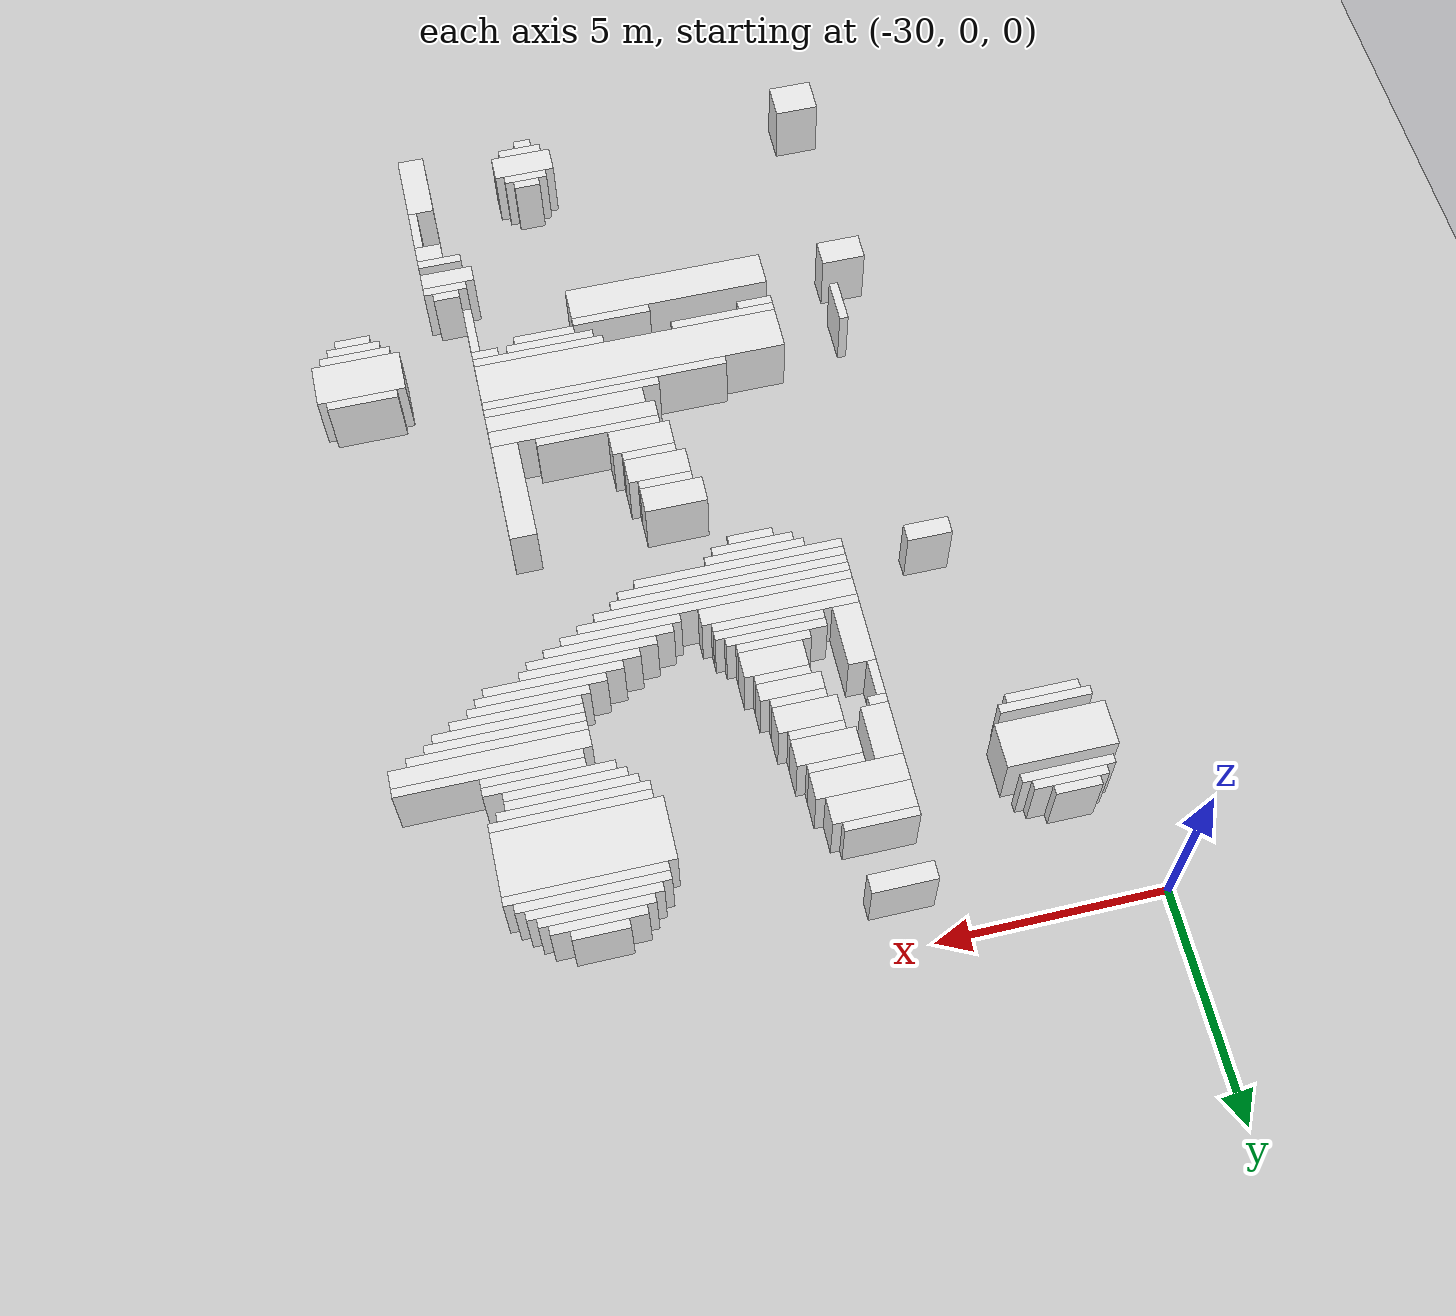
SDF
<sdf version="1.7">
 <world name="default">
  <model name="ground_plane">
   <static>1</static>
   <link name="link">
    <collision name="collision">
     <geometry><plane><normal>0 0 1</normal><size>120 120</size></plane></geometry>
    </collision>
    <visual name="visual">
     <geometry><plane><normal>0 0 1</normal><size>120 120</size></plane></geometry>
     <material>
      <script><uri>file://media/materials/scripts/gazebo.material</uri><name>Gazebo/Grey</name></script>
     </material>
    </visual>
   </link>
  </model>
  <model name="random_complex_01_model">
   <static>1</static>
   <link name="obs_1883">
    <pose>-24.5000 -1.0000 0.8000 0 0 0</pose>
    <collision name="obs_1883_col"><geometry><box><size>1.4000 0.4000 1.6000</size></box></geometry></collision>
    <visual name="obs_1883_vis">
     <geometry><box><size>1.4000 0.4000 1.6000</size></box></geometry>
     <material>
      <script><uri>file://media/materials/scripts/gazebo.material</uri><name>Gazebo/White</name></script>
     </material>
    </visual>
   </link>
   <link name="obs_1892">
    <pose>-18.4000 -1.3000 0.8000 0 0 0</pose>
    <collision name="obs_1892_col"><geometry><box><size>1.2000 0.2000 1.6000</size></box></geometry></collision>
    <visual name="obs_1892_vis">
     <geometry><box><size>1.2000 0.2000 1.6000</size></box></geometry>
     <material>
      <script><uri>file://media/materials/scripts/gazebo.material</uri><name>Gazebo/White</name></script>
     </material>
    </visual>
   </link>
   <link name="obs_1899">
    <pose>-18.4000 -1.5000 0.8000 0 0 0</pose>
    <collision name="obs_1899_col"><geometry><box><size>2.0000 0.2000 1.6000</size></box></geometry></collision>
    <visual name="obs_1899_vis">
     <geometry><box><size>2.0000 0.2000 1.6000</size></box></geometry>
     <material>
      <script><uri>file://media/materials/scripts/gazebo.material</uri><name>Gazebo/White</name></script>
     </material>
    </visual>
   </link>
   <link name="obs_1905">
    <pose>-18.4000 -1.7000 0.8000 0 0 0</pose>
    <collision name="obs_1905_col"><geometry><box><size>2.4000 0.2000 1.6000</size></box></geometry></collision>
    <visual name="obs_1905_vis">
     <geometry><box><size>2.4000 0.2000 1.6000</size></box></geometry>
     <material>
      <script><uri>file://media/materials/scripts/gazebo.material</uri><name>Gazebo/White</name></script>
     </material>
    </visual>
   </link>
   <link name="obs_1910">
    <pose>-18.4000 -1.9000 0.8000 0 0 0</pose>
    <collision name="obs_1910_col"><geometry><box><size>2.8000 0.2000 1.6000</size></box></geometry></collision>
    <visual name="obs_1910_vis">
     <geometry><box><size>2.8000 0.2000 1.6000</size></box></geometry>
     <material>
      <script><uri>file://media/materials/scripts/gazebo.material</uri><name>Gazebo/White</name></script>
     </material>
    </visual>
   </link>
   <link name="obs_1916">
    <pose>-28.5000 -2.1000 0.8000 0 0 0</pose>
    <collision name="obs_1916_col"><geometry><box><size>1.0000 0.2000 1.6000</size></box></geometry></collision>
    <visual name="obs_1916_vis">
     <geometry><box><size>1.0000 0.2000 1.6000</size></box></geometry>
     <material>
      <script><uri>file://media/materials/scripts/gazebo.material</uri><name>Gazebo/White</name></script>
     </material>
    </visual>
   </link>
   <link name="obs_1917">
    <pose>-18.4000 -2.1000 0.8000 0 0 0</pose>
    <collision name="obs_1917_col"><geometry><box><size>3.2000 0.2000 1.6000</size></box></geometry></collision>
    <visual name="obs_1917_vis">
     <geometry><box><size>3.2000 0.2000 1.6000</size></box></geometry>
     <material>
      <script><uri>file://media/materials/scripts/gazebo.material</uri><name>Gazebo/White</name></script>
     </material>
    </visual>
   </link>
   <link name="obs_1923">
    <pose>-28.4000 -2.3000 0.8000 0 0 0</pose>
    <collision name="obs_1923_col"><geometry><box><size>1.6000 0.2000 1.6000</size></box></geometry></collision>
    <visual name="obs_1923_vis">
     <geometry><box><size>1.6000 0.2000 1.6000</size></box></geometry>
     <material>
      <script><uri>file://media/materials/scripts/gazebo.material</uri><name>Gazebo/White</name></script>
     </material>
    </visual>
   </link>
   <link name="obs_1924">
    <pose>-24.4000 -2.3000 0.8000 0 0 0</pose>
    <collision name="obs_1924_col"><geometry><box><size>1.6000 0.2000 1.6000</size></box></geometry></collision>
    <visual name="obs_1924_vis">
     <geometry><box><size>1.6000 0.2000 1.6000</size></box></geometry>
     <material>
      <script><uri>file://media/materials/scripts/gazebo.material</uri><name>Gazebo/White</name></script>
     </material>
    </visual>
   </link>
   <link name="obs_1925">
    <pose>-18.3000 -2.3000 0.8000 0 0 0</pose>
    <collision name="obs_1925_col"><geometry><box><size>3.4000 0.2000 1.6000</size></box></geometry></collision>
    <visual name="obs_1925_vis">
     <geometry><box><size>3.4000 0.2000 1.6000</size></box></geometry>
     <material>
      <script><uri>file://media/materials/scripts/gazebo.material</uri><name>Gazebo/White</name></script>
     </material>
    </visual>
   </link>
   <link name="obs_1932">
    <pose>-28.4000 -2.5000 0.8000 0 0 0</pose>
    <collision name="obs_1932_col"><geometry><box><size>2.0000 0.2000 1.6000</size></box></geometry></collision>
    <visual name="obs_1932_vis">
     <geometry><box><size>2.0000 0.2000 1.6000</size></box></geometry>
     <material>
      <script><uri>file://media/materials/scripts/gazebo.material</uri><name>Gazebo/White</name></script>
     </material>
    </visual>
   </link>
   <link name="obs_1944">
    <pose>-24.3000 -2.7000 0.8000 0 0 0</pose>
    <collision name="obs_1944_col"><geometry><box><size>1.8000 0.6000 1.6000</size></box></geometry></collision>
    <visual name="obs_1944_vis">
     <geometry><box><size>1.8000 0.6000 1.6000</size></box></geometry>
     <material>
      <script><uri>file://media/materials/scripts/gazebo.material</uri><name>Gazebo/White</name></script>
     </material>
    </visual>
   </link>
   <link name="obs_1967">
    <pose>-24.2000 -3.3000 0.8000 0 0 0</pose>
    <collision name="obs_1967_col"><geometry><box><size>2.0000 0.6000 1.6000</size></box></geometry></collision>
    <visual name="obs_1967_vis">
     <geometry><box><size>2.0000 0.6000 1.6000</size></box></geometry>
     <material>
      <script><uri>file://media/materials/scripts/gazebo.material</uri><name>Gazebo/White</name></script>
     </material>
    </visual>
   </link>
   <link name="obs_1974">
    <pose>-18.4000 -3.1000 0.8000 0 0 0</pose>
    <collision name="obs_1974_col"><geometry><box><size>3.6000 1.4000 1.6000</size></box></geometry></collision>
    <visual name="obs_1974_vis">
     <geometry><box><size>3.6000 1.4000 1.6000</size></box></geometry>
     <material>
      <script><uri>file://media/materials/scripts/gazebo.material</uri><name>Gazebo/White</name></script>
     </material>
    </visual>
   </link>
   <link name="obs_1975">
    <pose>-28.4000 -3.3000 0.8000 0 0 0</pose>
    <collision name="obs_1975_col"><geometry><box><size>2.4000 1.0000 1.6000</size></box></geometry></collision>
    <visual name="obs_1975_vis">
     <geometry><box><size>2.4000 1.0000 1.6000</size></box></geometry>
     <material>
      <script><uri>file://media/materials/scripts/gazebo.material</uri><name>Gazebo/White</name></script>
     </material>
    </visual>
   </link>
   <link name="obs_1979">
    <pose>-23.8000 -3.7000 0.8000 0 0 0</pose>
    <collision name="obs_1979_col"><geometry><box><size>1.2000 0.2000 1.6000</size></box></geometry></collision>
    <visual name="obs_1979_vis">
     <geometry><box><size>1.2000 0.2000 1.6000</size></box></geometry>
     <material>
      <script><uri>file://media/materials/scripts/gazebo.material</uri><name>Gazebo/White</name></script>
     </material>
    </visual>
   </link>
   <link name="obs_1989">
    <pose>-18.3000 -3.9000 0.8000 0 0 0</pose>
    <collision name="obs_1989_col"><geometry><box><size>3.4000 0.2000 1.6000</size></box></geometry></collision>
    <visual name="obs_1989_vis">
     <geometry><box><size>3.4000 0.2000 1.6000</size></box></geometry>
     <material>
      <script><uri>file://media/materials/scripts/gazebo.material</uri><name>Gazebo/White</name></script>
     </material>
    </visual>
   </link>
   <link name="obs_1997">
    <pose>-28.4000 -4.1000 0.8000 0 0 0</pose>
    <collision name="obs_1997_col"><geometry><box><size>2.0000 0.2000 1.6000</size></box></geometry></collision>
    <visual name="obs_1997_vis">
     <geometry><box><size>2.0000 0.2000 1.6000</size></box></geometry>
     <material>
      <script><uri>file://media/materials/scripts/gazebo.material</uri><name>Gazebo/White</name></script>
     </material>
    </visual>
   </link>
   <link name="obs_1998">
    <pose>-18.4000 -4.1000 0.8000 0 0 0</pose>
    <collision name="obs_1998_col"><geometry><box><size>3.2000 0.2000 1.6000</size></box></geometry></collision>
    <visual name="obs_1998_vis">
     <geometry><box><size>3.2000 0.2000 1.6000</size></box></geometry>
     <material>
      <script><uri>file://media/materials/scripts/gazebo.material</uri><name>Gazebo/White</name></script>
     </material>
    </visual>
   </link>
   <link name="obs_2004">
    <pose>-23.7000 -4.1000 0.8000 0 0 0</pose>
    <collision name="obs_2004_col"><geometry><box><size>1.4000 0.6000 1.6000</size></box></geometry></collision>
    <visual name="obs_2004_vis">
     <geometry><box><size>1.4000 0.6000 1.6000</size></box></geometry>
     <material>
      <script><uri>file://media/materials/scripts/gazebo.material</uri><name>Gazebo/White</name></script>
     </material>
    </visual>
   </link>
   <link name="obs_2008">
    <pose>-28.4000 -4.3000 0.8000 0 0 0</pose>
    <collision name="obs_2008_col"><geometry><box><size>1.6000 0.2000 1.6000</size></box></geometry></collision>
    <visual name="obs_2008_vis">
     <geometry><box><size>1.6000 0.2000 1.6000</size></box></geometry>
     <material>
      <script><uri>file://media/materials/scripts/gazebo.material</uri><name>Gazebo/White</name></script>
     </material>
    </visual>
   </link>
   <link name="obs_2009">
    <pose>-18.4000 -4.3000 0.8000 0 0 0</pose>
    <collision name="obs_2009_col"><geometry><box><size>2.8000 0.2000 1.6000</size></box></geometry></collision>
    <visual name="obs_2009_vis">
     <geometry><box><size>2.8000 0.2000 1.6000</size></box></geometry>
     <material>
      <script><uri>file://media/materials/scripts/gazebo.material</uri><name>Gazebo/White</name></script>
     </material>
    </visual>
   </link>
   <link name="obs_2019">
    <pose>-23.6000 -4.5000 0.8000 0 0 0</pose>
    <collision name="obs_2019_col"><geometry><box><size>1.2000 0.2000 1.6000</size></box></geometry></collision>
    <visual name="obs_2019_vis">
     <geometry><box><size>1.2000 0.2000 1.6000</size></box></geometry>
     <material>
      <script><uri>file://media/materials/scripts/gazebo.material</uri><name>Gazebo/White</name></script>
     </material>
    </visual>
   </link>
   <link name="obs_2020">
    <pose>-18.3000 -4.5000 0.8000 0 0 0</pose>
    <collision name="obs_2020_col"><geometry><box><size>2.6000 0.2000 1.6000</size></box></geometry></collision>
    <visual name="obs_2020_vis">
     <geometry><box><size>2.6000 0.2000 1.6000</size></box></geometry>
     <material>
      <script><uri>file://media/materials/scripts/gazebo.material</uri><name>Gazebo/White</name></script>
     </material>
    </visual>
   </link>
   <link name="obs_2027">
    <pose>-24.9000 -4.2000 0.8000 0 0 0</pose>
    <collision name="obs_2027_col"><geometry><box><size>0.6000 1.2000 1.6000</size></box></geometry></collision>
    <visual name="obs_2027_vis">
     <geometry><box><size>0.6000 1.2000 1.6000</size></box></geometry>
     <material>
      <script><uri>file://media/materials/scripts/gazebo.material</uri><name>Gazebo/White</name></script>
     </material>
    </visual>
   </link>
   <link name="obs_2030">
    <pose>-18.0000 -4.7000 0.8000 0 0 0</pose>
    <collision name="obs_2030_col"><geometry><box><size>2.8000 0.2000 1.6000</size></box></geometry></collision>
    <visual name="obs_2030_vis">
     <geometry><box><size>2.8000 0.2000 1.6000</size></box></geometry>
     <material>
      <script><uri>file://media/materials/scripts/gazebo.material</uri><name>Gazebo/White</name></script>
     </material>
    </visual>
   </link>
   <link name="obs_2037">
    <pose>-25.0000 -4.9000 0.8000 0 0 0</pose>
    <collision name="obs_2037_col"><geometry><box><size>0.4000 0.2000 1.6000</size></box></geometry></collision>
    <visual name="obs_2037_vis">
     <geometry><box><size>0.4000 0.2000 1.6000</size></box></geometry>
     <material>
      <script><uri>file://media/materials/scripts/gazebo.material</uri><name>Gazebo/White</name></script>
     </material>
    </visual>
   </link>
   <link name="obs_2038">
    <pose>-17.7000 -4.9000 0.8000 0 0 0</pose>
    <collision name="obs_2038_col"><geometry><box><size>2.2000 0.2000 1.6000</size></box></geometry></collision>
    <visual name="obs_2038_vis">
     <geometry><box><size>2.2000 0.2000 1.6000</size></box></geometry>
     <material>
      <script><uri>file://media/materials/scripts/gazebo.material</uri><name>Gazebo/White</name></script>
     </material>
    </visual>
   </link>
   <link name="obs_2044">
    <pose>-23.5000 -4.9000 0.8000 0 0 0</pose>
    <collision name="obs_2044_col"><geometry><box><size>1.4000 0.6000 1.6000</size></box></geometry></collision>
    <visual name="obs_2044_vis">
     <geometry><box><size>1.4000 0.6000 1.6000</size></box></geometry>
     <material>
      <script><uri>file://media/materials/scripts/gazebo.material</uri><name>Gazebo/White</name></script>
     </material>
    </visual>
   </link>
   <link name="obs_2046">
    <pose>-16.8000 -5.1000 0.8000 0 0 0</pose>
    <collision name="obs_2046_col"><geometry><box><size>4.0000 0.2000 1.6000</size></box></geometry></collision>
    <visual name="obs_2046_vis">
     <geometry><box><size>4.0000 0.2000 1.6000</size></box></geometry>
     <material>
      <script><uri>file://media/materials/scripts/gazebo.material</uri><name>Gazebo/White</name></script>
     </material>
    </visual>
   </link>
   <link name="obs_2052">
    <pose>-23.4000 -5.3000 0.8000 0 0 0</pose>
    <collision name="obs_2052_col"><geometry><box><size>1.2000 0.2000 1.6000</size></box></geometry></collision>
    <visual name="obs_2052_vis">
     <geometry><box><size>1.2000 0.2000 1.6000</size></box></geometry>
     <material>
      <script><uri>file://media/materials/scripts/gazebo.material</uri><name>Gazebo/White</name></script>
     </material>
    </visual>
   </link>
   <link name="obs_2056">
    <pose>-16.9000 -5.4000 0.8000 0 0 0</pose>
    <collision name="obs_2056_col"><geometry><box><size>4.2000 0.4000 1.6000</size></box></geometry></collision>
    <visual name="obs_2056_vis">
     <geometry><box><size>4.2000 0.4000 1.6000</size></box></geometry>
     <material>
      <script><uri>file://media/materials/scripts/gazebo.material</uri><name>Gazebo/White</name></script>
     </material>
    </visual>
   </link>
   <link name="obs_2061">
    <pose>-25.1000 -5.4000 0.8000 0 0 0</pose>
    <collision name="obs_2061_col"><geometry><box><size>0.2000 0.8000 1.6000</size></box></geometry></collision>
    <visual name="obs_2061_vis">
     <geometry><box><size>0.2000 0.8000 1.6000</size></box></geometry>
     <material>
      <script><uri>file://media/materials/scripts/gazebo.material</uri><name>Gazebo/White</name></script>
     </material>
    </visual>
   </link>
   <link name="obs_2063">
    <pose>-23.3000 -5.6000 0.8000 0 0 0</pose>
    <collision name="obs_2063_col"><geometry><box><size>1.4000 0.4000 1.6000</size></box></geometry></collision>
    <visual name="obs_2063_vis">
     <geometry><box><size>1.4000 0.4000 1.6000</size></box></geometry>
     <material>
      <script><uri>file://media/materials/scripts/gazebo.material</uri><name>Gazebo/White</name></script>
     </material>
    </visual>
   </link>
   <link name="obs_2065">
    <pose>-17.1000 -5.7000 0.8000 0 0 0</pose>
    <collision name="obs_2065_col"><geometry><box><size>3.8000 0.2000 1.6000</size></box></geometry></collision>
    <visual name="obs_2065_vis">
     <geometry><box><size>3.8000 0.2000 1.6000</size></box></geometry>
     <material>
      <script><uri>file://media/materials/scripts/gazebo.material</uri><name>Gazebo/White</name></script>
     </material>
    </visual>
   </link>
   <link name="obs_2072">
    <pose>-23.2000 -5.9000 0.8000 0 0 0</pose>
    <collision name="obs_2072_col"><geometry><box><size>1.2000 0.2000 1.6000</size></box></geometry></collision>
    <visual name="obs_2072_vis">
     <geometry><box><size>1.2000 0.2000 1.6000</size></box></geometry>
     <material>
      <script><uri>file://media/materials/scripts/gazebo.material</uri><name>Gazebo/White</name></script>
     </material>
    </visual>
   </link>
   <link name="obs_2073">
    <pose>-17.3000 -5.9000 0.8000 0 0 0</pose>
    <collision name="obs_2073_col"><geometry><box><size>3.4000 0.2000 1.6000</size></box></geometry></collision>
    <visual name="obs_2073_vis">
     <geometry><box><size>3.4000 0.2000 1.6000</size></box></geometry>
     <material>
      <script><uri>file://media/materials/scripts/gazebo.material</uri><name>Gazebo/White</name></script>
     </material>
    </visual>
   </link>
   <link name="obs_2080">
    <pose>-17.4000 -6.1000 0.8000 0 0 0</pose>
    <collision name="obs_2080_col"><geometry><box><size>3.2000 0.2000 1.6000</size></box></geometry></collision>
    <visual name="obs_2080_vis">
     <geometry><box><size>3.2000 0.2000 1.6000</size></box></geometry>
     <material>
      <script><uri>file://media/materials/scripts/gazebo.material</uri><name>Gazebo/White</name></script>
     </material>
    </visual>
   </link>
   <link name="obs_2088">
    <pose>-17.6000 -6.3000 0.8000 0 0 0</pose>
    <collision name="obs_2088_col"><geometry><box><size>2.8000 0.2000 1.6000</size></box></geometry></collision>
    <visual name="obs_2088_vis">
     <geometry><box><size>2.8000 0.2000 1.6000</size></box></geometry>
     <material>
      <script><uri>file://media/materials/scripts/gazebo.material</uri><name>Gazebo/White</name></script>
     </material>
    </visual>
   </link>
   <link name="obs_2092">
    <pose>-23.1000 -6.3000 0.8000 0 0 0</pose>
    <collision name="obs_2092_col"><geometry><box><size>1.4000 0.6000 1.6000</size></box></geometry></collision>
    <visual name="obs_2092_vis">
     <geometry><box><size>1.4000 0.6000 1.6000</size></box></geometry>
     <material>
      <script><uri>file://media/materials/scripts/gazebo.material</uri><name>Gazebo/White</name></script>
     </material>
    </visual>
   </link>
   <link name="obs_2094">
    <pose>-17.9000 -6.5000 0.8000 0 0 0</pose>
    <collision name="obs_2094_col"><geometry><box><size>2.6000 0.2000 1.6000</size></box></geometry></collision>
    <visual name="obs_2094_vis">
     <geometry><box><size>2.6000 0.2000 1.6000</size></box></geometry>
     <material>
      <script><uri>file://media/materials/scripts/gazebo.material</uri><name>Gazebo/White</name></script>
     </material>
    </visual>
   </link>
   <link name="obs_2102">
    <pose>-23.2000 -6.7000 0.8000 0 0 0</pose>
    <collision name="obs_2102_col"><geometry><box><size>1.6000 0.2000 1.6000</size></box></geometry></collision>
    <visual name="obs_2102_vis">
     <geometry><box><size>1.6000 0.2000 1.6000</size></box></geometry>
     <material>
      <script><uri>file://media/materials/scripts/gazebo.material</uri><name>Gazebo/White</name></script>
     </material>
    </visual>
   </link>
   <link name="obs_2103">
    <pose>-18.2000 -6.7000 0.8000 0 0 0</pose>
    <collision name="obs_2103_col"><geometry><box><size>2.8000 0.2000 1.6000</size></box></geometry></collision>
    <visual name="obs_2103_vis">
     <geometry><box><size>2.8000 0.2000 1.6000</size></box></geometry>
     <material>
      <script><uri>file://media/materials/scripts/gazebo.material</uri><name>Gazebo/White</name></script>
     </material>
    </visual>
   </link>
   <link name="obs_2110">
    <pose>-23.3000 -6.9000 0.8000 0 0 0</pose>
    <collision name="obs_2110_col"><geometry><box><size>2.2000 0.2000 1.6000</size></box></geometry></collision>
    <visual name="obs_2110_vis">
     <geometry><box><size>2.2000 0.2000 1.6000</size></box></geometry>
     <material>
      <script><uri>file://media/materials/scripts/gazebo.material</uri><name>Gazebo/White</name></script>
     </material>
    </visual>
   </link>
   <link name="obs_2111">
    <pose>-18.5000 -6.9000 0.8000 0 0 0</pose>
    <collision name="obs_2111_col"><geometry><box><size>3.0000 0.2000 1.6000</size></box></geometry></collision>
    <visual name="obs_2111_vis">
     <geometry><box><size>3.0000 0.2000 1.6000</size></box></geometry>
     <material>
      <script><uri>file://media/materials/scripts/gazebo.material</uri><name>Gazebo/White</name></script>
     </material>
    </visual>
   </link>
   <link name="obs_2116">
    <pose>-24.9000 -6.5000 0.8000 0 0 0</pose>
    <collision name="obs_2116_col"><geometry><box><size>0.6000 1.4000 1.6000</size></box></geometry></collision>
    <visual name="obs_2116_vis">
     <geometry><box><size>0.6000 1.4000 1.6000</size></box></geometry>
     <material>
      <script><uri>file://media/materials/scripts/gazebo.material</uri><name>Gazebo/White</name></script>
     </material>
    </visual>
   </link>
   <link name="obs_2120">
    <pose>-23.2000 -7.1000 0.8000 0 0 0</pose>
    <collision name="obs_2120_col"><geometry><box><size>2.4000 0.2000 1.6000</size></box></geometry></collision>
    <visual name="obs_2120_vis">
     <geometry><box><size>2.4000 0.2000 1.6000</size></box></geometry>
     <material>
      <script><uri>file://media/materials/scripts/gazebo.material</uri><name>Gazebo/White</name></script>
     </material>
    </visual>
   </link>
   <link name="obs_2121">
    <pose>-19.1000 -7.1000 0.8000 0 0 0</pose>
    <collision name="obs_2121_col"><geometry><box><size>2.6000 0.2000 1.6000</size></box></geometry></collision>
    <visual name="obs_2121_vis">
     <geometry><box><size>2.6000 0.2000 1.6000</size></box></geometry>
     <material>
      <script><uri>file://media/materials/scripts/gazebo.material</uri><name>Gazebo/White</name></script>
     </material>
    </visual>
   </link>
   <link name="obs_2129">
    <pose>-23.6000 -7.3000 0.8000 0 0 0</pose>
    <collision name="obs_2129_col"><geometry><box><size>3.2000 0.2000 1.6000</size></box></geometry></collision>
    <visual name="obs_2129_vis">
     <geometry><box><size>3.2000 0.2000 1.6000</size></box></geometry>
     <material>
      <script><uri>file://media/materials/scripts/gazebo.material</uri><name>Gazebo/White</name></script>
     </material>
    </visual>
   </link>
   <link name="obs_2130">
    <pose>-19.4000 -7.3000 0.8000 0 0 0</pose>
    <collision name="obs_2130_col"><geometry><box><size>2.8000 0.2000 1.6000</size></box></geometry></collision>
    <visual name="obs_2130_vis">
     <geometry><box><size>2.8000 0.2000 1.6000</size></box></geometry>
     <material>
      <script><uri>file://media/materials/scripts/gazebo.material</uri><name>Gazebo/White</name></script>
     </material>
    </visual>
   </link>
   <link name="obs_2138">
    <pose>-19.8000 -7.5000 0.8000 0 0 0</pose>
    <collision name="obs_2138_col"><geometry><box><size>2.8000 0.2000 1.6000</size></box></geometry></collision>
    <visual name="obs_2138_vis">
     <geometry><box><size>2.8000 0.2000 1.6000</size></box></geometry>
     <material>
      <script><uri>file://media/materials/scripts/gazebo.material</uri><name>Gazebo/White</name></script>
     </material>
    </visual>
   </link>
   <link name="obs_2144">
    <pose>-23.5000 -7.6000 0.8000 0 0 0</pose>
    <collision name="obs_2144_col"><geometry><box><size>3.4000 0.4000 1.6000</size></box></geometry></collision>
    <visual name="obs_2144_vis">
     <geometry><box><size>3.4000 0.4000 1.6000</size></box></geometry>
     <material>
      <script><uri>file://media/materials/scripts/gazebo.material</uri><name>Gazebo/White</name></script>
     </material>
    </visual>
   </link>
   <link name="obs_2146">
    <pose>-20.1000 -7.7000 0.8000 0 0 0</pose>
    <collision name="obs_2146_col"><geometry><box><size>2.6000 0.2000 1.6000</size></box></geometry></collision>
    <visual name="obs_2146_vis">
     <geometry><box><size>2.6000 0.2000 1.6000</size></box></geometry>
     <material>
      <script><uri>file://media/materials/scripts/gazebo.material</uri><name>Gazebo/White</name></script>
     </material>
    </visual>
   </link>
   <link name="obs_2153">
    <pose>-22.2000 -7.9000 0.8000 0 0 0</pose>
    <collision name="obs_2153_col"><geometry><box><size>6.0000 0.2000 1.6000</size></box></geometry></collision>
    <visual name="obs_2153_vis">
     <geometry><box><size>6.0000 0.2000 1.6000</size></box></geometry>
     <material>
      <script><uri>file://media/materials/scripts/gazebo.material</uri><name>Gazebo/White</name></script>
     </material>
    </visual>
   </link>
   <link name="obs_2159">
    <pose>-22.4000 -8.1000 0.8000 0 0 0</pose>
    <collision name="obs_2159_col"><geometry><box><size>5.6000 0.2000 1.6000</size></box></geometry></collision>
    <visual name="obs_2159_vis">
     <geometry><box><size>5.6000 0.2000 1.6000</size></box></geometry>
     <material>
      <script><uri>file://media/materials/scripts/gazebo.material</uri><name>Gazebo/White</name></script>
     </material>
    </visual>
   </link>
   <link name="obs_2163">
    <pose>-22.6000 -8.3000 0.8000 0 0 0</pose>
    <collision name="obs_2163_col"><geometry><box><size>5.2000 0.2000 1.6000</size></box></geometry></collision>
    <visual name="obs_2163_vis">
     <geometry><box><size>5.2000 0.2000 1.6000</size></box></geometry>
     <material>
      <script><uri>file://media/materials/scripts/gazebo.material</uri><name>Gazebo/White</name></script>
     </material>
    </visual>
   </link>
   <link name="obs_2171">
    <pose>-22.7000 -8.5000 0.8000 0 0 0</pose>
    <collision name="obs_2171_col"><geometry><box><size>5.0000 0.2000 1.6000</size></box></geometry></collision>
    <visual name="obs_2171_vis">
     <geometry><box><size>5.0000 0.2000 1.6000</size></box></geometry>
     <material>
      <script><uri>file://media/materials/scripts/gazebo.material</uri><name>Gazebo/White</name></script>
     </material>
    </visual>
   </link>
   <link name="obs_2177">
    <pose>-27.1000 -8.6000 0.8000 0 0 0</pose>
    <collision name="obs_2177_col"><geometry><box><size>1.0000 0.4000 1.6000</size></box></geometry></collision>
    <visual name="obs_2177_vis">
     <geometry><box><size>1.0000 0.4000 1.6000</size></box></geometry>
     <material>
      <script><uri>file://media/materials/scripts/gazebo.material</uri><name>Gazebo/White</name></script>
     </material>
    </visual>
   </link>
   <link name="obs_2179">
    <pose>-22.9000 -8.7000 0.8000 0 0 0</pose>
    <collision name="obs_2179_col"><geometry><box><size>4.6000 0.2000 1.6000</size></box></geometry></collision>
    <visual name="obs_2179_vis">
     <geometry><box><size>4.6000 0.2000 1.6000</size></box></geometry>
     <material>
      <script><uri>file://media/materials/scripts/gazebo.material</uri><name>Gazebo/White</name></script>
     </material>
    </visual>
   </link>
   <link name="obs_2187">
    <pose>-23.3000 -8.9000 0.8000 0 0 0</pose>
    <collision name="obs_2187_col"><geometry><box><size>2.2000 0.2000 1.6000</size></box></geometry></collision>
    <visual name="obs_2187_vis">
     <geometry><box><size>2.2000 0.2000 1.6000</size></box></geometry>
     <material>
      <script><uri>file://media/materials/scripts/gazebo.material</uri><name>Gazebo/White</name></script>
     </material>
    </visual>
   </link>
   <link name="obs_2191">
    <pose>-23.3000 -9.1000 0.8000 0 0 0</pose>
    <collision name="obs_2191_col"><geometry><box><size>1.8000 0.2000 1.6000</size></box></geometry></collision>
    <visual name="obs_2191_vis">
     <geometry><box><size>1.8000 0.2000 1.6000</size></box></geometry>
     <material>
      <script><uri>file://media/materials/scripts/gazebo.material</uri><name>Gazebo/White</name></script>
     </material>
    </visual>
   </link>
   <link name="obs_2197">
    <pose>-23.3000 -9.3000 0.8000 0 0 0</pose>
    <collision name="obs_2197_col"><geometry><box><size>1.0000 0.2000 1.6000</size></box></geometry></collision>
    <visual name="obs_2197_vis">
     <geometry><box><size>1.0000 0.2000 1.6000</size></box></geometry>
     <material>
      <script><uri>file://media/materials/scripts/gazebo.material</uri><name>Gazebo/White</name></script>
     </material>
    </visual>
   </link>
   <link name="obs_2245">
    <pose>-21.9000 -10.7000 0.8000 0 0 0</pose>
    <collision name="obs_2245_col"><geometry><box><size>1.4000 0.6000 1.6000</size></box></geometry></collision>
    <visual name="obs_2245_vis">
     <geometry><box><size>1.4000 0.6000 1.6000</size></box></geometry>
     <material>
      <script><uri>file://media/materials/scripts/gazebo.material</uri><name>Gazebo/White</name></script>
     </material>
    </visual>
   </link>
   <link name="obs_2258">
    <pose>-21.8000 -11.1000 0.8000 0 0 0</pose>
    <collision name="obs_2258_col"><geometry><box><size>1.2000 0.2000 1.6000</size></box></geometry></collision>
    <visual name="obs_2258_vis">
     <geometry><box><size>1.2000 0.2000 1.6000</size></box></geometry>
     <material>
      <script><uri>file://media/materials/scripts/gazebo.material</uri><name>Gazebo/White</name></script>
     </material>
    </visual>
   </link>
   <link name="obs_2272">
    <pose>-21.7000 -11.5000 0.8000 0 0 0</pose>
    <collision name="obs_2272_col"><geometry><box><size>1.4000 0.6000 1.6000</size></box></geometry></collision>
    <visual name="obs_2272_vis">
     <geometry><box><size>1.4000 0.6000 1.6000</size></box></geometry>
     <material>
      <script><uri>file://media/materials/scripts/gazebo.material</uri><name>Gazebo/White</name></script>
     </material>
    </visual>
   </link>
   <link name="obs_2283">
    <pose>-21.6000 -11.9000 0.8000 0 0 0</pose>
    <collision name="obs_2283_col"><geometry><box><size>1.2000 0.2000 1.6000</size></box></geometry></collision>
    <visual name="obs_2283_vis">
     <geometry><box><size>1.2000 0.2000 1.6000</size></box></geometry>
     <material>
      <script><uri>file://media/materials/scripts/gazebo.material</uri><name>Gazebo/White</name></script>
     </material>
    </visual>
   </link>
   <link name="obs_2297">
    <pose>-21.5000 -12.3000 0.8000 0 0 0</pose>
    <collision name="obs_2297_col"><geometry><box><size>1.4000 0.6000 1.6000</size></box></geometry></collision>
    <visual name="obs_2297_vis">
     <geometry><box><size>1.4000 0.6000 1.6000</size></box></geometry>
     <material>
      <script><uri>file://media/materials/scripts/gazebo.material</uri><name>Gazebo/White</name></script>
     </material>
    </visual>
   </link>
   <link name="obs_2307">
    <pose>-18.5000 -11.6000 0.8000 0 0 0</pose>
    <collision name="obs_2307_col"><geometry><box><size>0.6000 2.4000 1.6000</size></box></geometry></collision>
    <visual name="obs_2307_vis">
     <geometry><box><size>0.6000 2.4000 1.6000</size></box></geometry>
     <material>
      <script><uri>file://media/materials/scripts/gazebo.material</uri><name>Gazebo/White</name></script>
     </material>
    </visual>
   </link>
   <link name="obs_2309">
    <pose>-20.6000 -12.7000 0.8000 0 0 0</pose>
    <collision name="obs_2309_col"><geometry><box><size>2.8000 0.2000 1.6000</size></box></geometry></collision>
    <visual name="obs_2309_vis">
     <geometry><box><size>2.8000 0.2000 1.6000</size></box></geometry>
     <material>
      <script><uri>file://media/materials/scripts/gazebo.material</uri><name>Gazebo/White</name></script>
     </material>
    </visual>
   </link>
   <link name="obs_2320">
    <pose>-20.1000 -13.0000 0.8000 0 0 0</pose>
    <collision name="obs_2320_col"><geometry><box><size>3.8000 0.4000 1.6000</size></box></geometry></collision>
    <visual name="obs_2320_vis">
     <geometry><box><size>3.8000 0.4000 1.6000</size></box></geometry>
     <material>
      <script><uri>file://media/materials/scripts/gazebo.material</uri><name>Gazebo/White</name></script>
     </material>
    </visual>
   </link>
   <link name="obs_2333">
    <pose>-20.0000 -13.4000 0.8000 0 0 0</pose>
    <collision name="obs_2333_col"><geometry><box><size>3.6000 0.4000 1.6000</size></box></geometry></collision>
    <visual name="obs_2333_vis">
     <geometry><box><size>3.6000 0.4000 1.6000</size></box></geometry>
     <material>
      <script><uri>file://media/materials/scripts/gazebo.material</uri><name>Gazebo/White</name></script>
     </material>
    </visual>
   </link>
   <link name="obs_2340">
    <pose>-20.2000 -13.7000 0.8000 0 0 0</pose>
    <collision name="obs_2340_col"><geometry><box><size>4.0000 0.2000 1.6000</size></box></geometry></collision>
    <visual name="obs_2340_vis">
     <geometry><box><size>4.0000 0.2000 1.6000</size></box></geometry>
     <material>
      <script><uri>file://media/materials/scripts/gazebo.material</uri><name>Gazebo/White</name></script>
     </material>
    </visual>
   </link>
   <link name="obs_2347">
    <pose>-21.0000 -13.9000 0.8000 0 0 0</pose>
    <collision name="obs_2347_col"><geometry><box><size>5.6000 0.2000 1.6000</size></box></geometry></collision>
    <visual name="obs_2347_vis">
     <geometry><box><size>5.6000 0.2000 1.6000</size></box></geometry>
     <material>
      <script><uri>file://media/materials/scripts/gazebo.material</uri><name>Gazebo/White</name></script>
     </material>
    </visual>
   </link>
   <link name="obs_2376">
    <pose>-15.6000 -14.7000 0.8000 0 0 0</pose>
    <collision name="obs_2376_col"><geometry><box><size>1.6000 0.2000 1.6000</size></box></geometry></collision>
    <visual name="obs_2376_vis">
     <geometry><box><size>1.6000 0.2000 1.6000</size></box></geometry>
     <material>
      <script><uri>file://media/materials/scripts/gazebo.material</uri><name>Gazebo/White</name></script>
     </material>
    </visual>
   </link>
   <link name="obs_2384">
    <pose>-21.7000 -14.5000 0.8000 0 0 0</pose>
    <collision name="obs_2384_col"><geometry><box><size>7.0000 1.0000 1.6000</size></box></geometry></collision>
    <visual name="obs_2384_vis">
     <geometry><box><size>7.0000 1.0000 1.6000</size></box></geometry>
     <material>
      <script><uri>file://media/materials/scripts/gazebo.material</uri><name>Gazebo/White</name></script>
     </material>
    </visual>
   </link>
   <link name="obs_2397">
    <pose>-24.0000 -15.1000 0.8000 0 0 0</pose>
    <collision name="obs_2397_col"><geometry><box><size>2.4000 0.2000 1.6000</size></box></geometry></collision>
    <visual name="obs_2397_vis">
     <geometry><box><size>2.4000 0.2000 1.6000</size></box></geometry>
     <material>
      <script><uri>file://media/materials/scripts/gazebo.material</uri><name>Gazebo/White</name></script>
     </material>
    </visual>
   </link>
   <link name="obs_2398">
    <pose>-19.7000 -15.1000 0.8000 0 0 0</pose>
    <collision name="obs_2398_col"><geometry><box><size>3.0000 0.2000 1.6000</size></box></geometry></collision>
    <visual name="obs_2398_vis">
     <geometry><box><size>3.0000 0.2000 1.6000</size></box></geometry>
     <material>
      <script><uri>file://media/materials/scripts/gazebo.material</uri><name>Gazebo/White</name></script>
     </material>
    </visual>
   </link>
   <link name="obs_2407">
    <pose>-26.7000 -14.9000 0.8000 0 0 0</pose>
    <collision name="obs_2407_col"><geometry><box><size>0.2000 1.0000 1.6000</size></box></geometry></collision>
    <visual name="obs_2407_vis">
     <geometry><box><size>0.2000 1.0000 1.6000</size></box></geometry>
     <material>
      <script><uri>file://media/materials/scripts/gazebo.material</uri><name>Gazebo/White</name></script>
     </material>
    </visual>
   </link>
   <link name="obs_2411">
    <pose>-24.8000 -15.3000 0.8000 0 0 0</pose>
    <collision name="obs_2411_col"><geometry><box><size>0.8000 0.2000 1.6000</size></box></geometry></collision>
    <visual name="obs_2411_vis">
     <geometry><box><size>0.8000 0.2000 1.6000</size></box></geometry>
     <material>
      <script><uri>file://media/materials/scripts/gazebo.material</uri><name>Gazebo/White</name></script>
     </material>
    </visual>
   </link>
   <link name="obs_2412">
    <pose>-20.0000 -15.3000 0.8000 0 0 0</pose>
    <collision name="obs_2412_col"><geometry><box><size>2.0000 0.2000 1.6000</size></box></geometry></collision>
    <visual name="obs_2412_vis">
     <geometry><box><size>2.0000 0.2000 1.6000</size></box></geometry>
     <material>
      <script><uri>file://media/materials/scripts/gazebo.material</uri><name>Gazebo/White</name></script>
     </material>
    </visual>
   </link>
   <link name="obs_2413">
    <pose>-18.5000 -15.3000 0.8000 0 0 0</pose>
    <collision name="obs_2413_col"><geometry><box><size>0.6000 0.2000 1.6000</size></box></geometry></collision>
    <visual name="obs_2413_vis">
     <geometry><box><size>0.6000 0.2000 1.6000</size></box></geometry>
     <material>
      <script><uri>file://media/materials/scripts/gazebo.material</uri><name>Gazebo/White</name></script>
     </material>
    </visual>
   </link>
   <link name="obs_2421">
    <pose>-19.9000 -15.5000 0.8000 0 0 0</pose>
    <collision name="obs_2421_col"><geometry><box><size>1.4000 0.2000 1.6000</size></box></geometry></collision>
    <visual name="obs_2421_vis">
     <geometry><box><size>1.4000 0.2000 1.6000</size></box></geometry>
     <material>
      <script><uri>file://media/materials/scripts/gazebo.material</uri><name>Gazebo/White</name></script>
     </material>
    </visual>
   </link>
   <link name="obs_2429">
    <pose>-15.6000 -15.3000 0.8000 0 0 0</pose>
    <collision name="obs_2429_col"><geometry><box><size>2.0000 1.0000 1.6000</size></box></geometry></collision>
    <visual name="obs_2429_vis">
     <geometry><box><size>2.0000 1.0000 1.6000</size></box></geometry>
     <material>
      <script><uri>file://media/materials/scripts/gazebo.material</uri><name>Gazebo/White</name></script>
     </material>
    </visual>
   </link>
   <link name="obs_2433">
    <pose>-21.5000 -15.7000 0.8000 0 0 0</pose>
    <collision name="obs_2433_col"><geometry><box><size>1.8000 0.2000 1.6000</size></box></geometry></collision>
    <visual name="obs_2433_vis">
     <geometry><box><size>1.8000 0.2000 1.6000</size></box></geometry>
     <material>
      <script><uri>file://media/materials/scripts/gazebo.material</uri><name>Gazebo/White</name></script>
     </material>
    </visual>
   </link>
   <link name="obs_2445">
    <pose>-15.6000 -15.9000 0.8000 0 0 0</pose>
    <collision name="obs_2445_col"><geometry><box><size>1.6000 0.2000 1.6000</size></box></geometry></collision>
    <visual name="obs_2445_vis">
     <geometry><box><size>1.6000 0.2000 1.6000</size></box></geometry>
     <material>
      <script><uri>file://media/materials/scripts/gazebo.material</uri><name>Gazebo/White</name></script>
     </material>
    </visual>
   </link>
   <link name="obs_2456">
    <pose>-15.6000 -16.1000 0.8000 0 0 0</pose>
    <collision name="obs_2456_col"><geometry><box><size>1.2000 0.2000 1.6000</size></box></geometry></collision>
    <visual name="obs_2456_vis">
     <geometry><box><size>1.2000 0.2000 1.6000</size></box></geometry>
     <material>
      <script><uri>file://media/materials/scripts/gazebo.material</uri><name>Gazebo/White</name></script>
     </material>
    </visual>
   </link>
   <link name="obs_2466">
    <pose>-15.6000 -16.3000 0.8000 0 0 0</pose>
    <collision name="obs_2466_col"><geometry><box><size>0.8000 0.2000 1.6000</size></box></geometry></collision>
    <visual name="obs_2466_vis">
     <geometry><box><size>0.8000 0.2000 1.6000</size></box></geometry>
     <material>
      <script><uri>file://media/materials/scripts/gazebo.material</uri><name>Gazebo/White</name></script>
     </material>
    </visual>
   </link>
   <link name="obs_2471">
    <pose>-18.3000 -16.0000 0.8000 0 0 0</pose>
    <collision name="obs_2471_col"><geometry><box><size>0.2000 1.2000 1.6000</size></box></geometry></collision>
    <visual name="obs_2471_vis">
     <geometry><box><size>0.2000 1.2000 1.6000</size></box></geometry>
     <material>
      <script><uri>file://media/materials/scripts/gazebo.material</uri><name>Gazebo/White</name></script>
     </material>
    </visual>
   </link>
   <link name="obs_2472">
    <pose>-22.9000 -16.2000 0.8000 0 0 0</pose>
    <collision name="obs_2472_col"><geometry><box><size>4.6000 0.8000 1.6000</size></box></geometry></collision>
    <visual name="obs_2472_vis">
     <geometry><box><size>4.6000 0.8000 1.6000</size></box></geometry>
     <material>
      <script><uri>file://media/materials/scripts/gazebo.material</uri><name>Gazebo/White</name></script>
     </material>
    </visual>
   </link>
   <link name="obs_2473">
    <pose>-27.1000 -16.3000 0.8000 0 0 0</pose>
    <collision name="obs_2473_col"><geometry><box><size>1.0000 0.6000 1.6000</size></box></geometry></collision>
    <visual name="obs_2473_vis">
     <geometry><box><size>1.0000 0.6000 1.6000</size></box></geometry>
     <material>
      <script><uri>file://media/materials/scripts/gazebo.material</uri><name>Gazebo/White</name></script>
     </material>
    </visual>
   </link>
   <link name="obs_2490">
    <pose>-17.9000 -17.1000 0.8000 0 0 0</pose>
    <collision name="obs_2490_col"><geometry><box><size>0.6000 0.2000 1.6000</size></box></geometry></collision>
    <visual name="obs_2490_vis">
     <geometry><box><size>0.6000 0.2000 1.6000</size></box></geometry>
     <material>
      <script><uri>file://media/materials/scripts/gazebo.material</uri><name>Gazebo/White</name></script>
     </material>
    </visual>
   </link>
   <link name="obs_2492">
    <pose>-17.9000 -17.3000 0.8000 0 0 0</pose>
    <collision name="obs_2492_col"><geometry><box><size>1.0000 0.2000 1.6000</size></box></geometry></collision>
    <visual name="obs_2492_vis">
     <geometry><box><size>1.0000 0.2000 1.6000</size></box></geometry>
     <material>
      <script><uri>file://media/materials/scripts/gazebo.material</uri><name>Gazebo/White</name></script>
     </material>
    </visual>
   </link>
   <link name="obs_2499">
    <pose>-18.0000 -17.6000 0.8000 0 0 0</pose>
    <collision name="obs_2499_col"><geometry><box><size>1.2000 0.4000 1.6000</size></box></geometry></collision>
    <visual name="obs_2499_vis">
     <geometry><box><size>1.2000 0.4000 1.6000</size></box></geometry>
     <material>
      <script><uri>file://media/materials/scripts/gazebo.material</uri><name>Gazebo/White</name></script>
     </material>
    </visual>
   </link>
   <link name="obs_2514">
    <pose>-17.9000 -18.1000 0.8000 0 0 0</pose>
    <collision name="obs_2514_col"><geometry><box><size>1.0000 0.2000 1.6000</size></box></geometry></collision>
    <visual name="obs_2514_vis">
     <geometry><box><size>1.0000 0.2000 1.6000</size></box></geometry>
     <material>
      <script><uri>file://media/materials/scripts/gazebo.material</uri><name>Gazebo/White</name></script>
     </material>
    </visual>
   </link>
   <link name="obs_2525">
    <pose>-17.7000 -18.4000 0.8000 0 0 0</pose>
    <collision name="obs_2525_col"><geometry><box><size>0.6000 0.4000 1.6000</size></box></geometry></collision>
    <visual name="obs_2525_vis">
     <geometry><box><size>0.6000 0.4000 1.6000</size></box></geometry>
     <material>
      <script><uri>file://media/materials/scripts/gazebo.material</uri><name>Gazebo/White</name></script>
     </material>
    </visual>
   </link>
   <link name="obs_2557">
    <pose>-17.5000 -19.1000 0.8000 0 0 0</pose>
    <collision name="obs_2557_col"><geometry><box><size>0.2000 1.0000 1.6000</size></box></geometry></collision>
    <visual name="obs_2557_vis">
     <geometry><box><size>0.2000 1.0000 1.6000</size></box></geometry>
     <material>
      <script><uri>file://media/materials/scripts/gazebo.material</uri><name>Gazebo/White</name></script>
     </material>
    </visual>
   </link>
   <link name="obs_2575">
    <pose>-20.3000 -19.9000 0.8000 0 0 0</pose>
    <collision name="obs_2575_col"><geometry><box><size>0.6000 0.2000 1.6000</size></box></geometry></collision>
    <visual name="obs_2575_vis">
     <geometry><box><size>0.6000 0.2000 1.6000</size></box></geometry>
     <material>
      <script><uri>file://media/materials/scripts/gazebo.material</uri><name>Gazebo/White</name></script>
     </material>
    </visual>
   </link>
   <link name="obs_2583">
    <pose>-20.3000 -20.1000 0.8000 0 0 0</pose>
    <collision name="obs_2583_col"><geometry><box><size>1.0000 0.2000 1.6000</size></box></geometry></collision>
    <visual name="obs_2583_vis">
     <geometry><box><size>1.0000 0.2000 1.6000</size></box></geometry>
     <material>
      <script><uri>file://media/materials/scripts/gazebo.material</uri><name>Gazebo/White</name></script>
     </material>
    </visual>
   </link>
   <link name="obs_2601">
    <pose>-20.3000 -20.5000 0.8000 0 0 0</pose>
    <collision name="obs_2601_col"><geometry><box><size>1.4000 0.6000 1.6000</size></box></geometry></collision>
    <visual name="obs_2601_vis">
     <geometry><box><size>1.4000 0.6000 1.6000</size></box></geometry>
     <material>
      <script><uri>file://media/materials/scripts/gazebo.material</uri><name>Gazebo/White</name></script>
     </material>
    </visual>
   </link>
   <link name="obs_2612">
    <pose>-20.3000 -20.9000 0.8000 0 0 0</pose>
    <collision name="obs_2612_col"><geometry><box><size>1.0000 0.2000 1.6000</size></box></geometry></collision>
    <visual name="obs_2612_vis">
     <geometry><box><size>1.0000 0.2000 1.6000</size></box></geometry>
     <material>
      <script><uri>file://media/materials/scripts/gazebo.material</uri><name>Gazebo/White</name></script>
     </material>
    </visual>
   </link>
   <link name="obs_2616">
    <pose>-17.7000 -20.4000 0.8000 0 0 0</pose>
    <collision name="obs_2616_col"><geometry><box><size>0.6000 1.6000 1.6000</size></box></geometry></collision>
    <visual name="obs_2616_vis">
     <geometry><box><size>0.6000 1.6000 1.6000</size></box></geometry>
     <material>
      <script><uri>file://media/materials/scripts/gazebo.material</uri><name>Gazebo/White</name></script>
     </material>
    </visual>
   </link>
   <link name="obs_2621">
    <pose>-20.4000 -21.1000 0.8000 0 0 0</pose>
    <collision name="obs_2621_col"><geometry><box><size>0.4000 0.2000 1.6000</size></box></geometry></collision>
    <visual name="obs_2621_vis">
     <geometry><box><size>0.4000 0.2000 1.6000</size></box></geometry>
     <material>
      <script><uri>file://media/materials/scripts/gazebo.material</uri><name>Gazebo/White</name></script>
     </material>
    </visual>
   </link>
   <link name="obs_2628">
    <pose>-27.1000 -21.0000 0.8000 0 0 0</pose>
    <collision name="obs_2628_col"><geometry><box><size>1.0000 0.8000 1.6000</size></box></geometry></collision>
    <visual name="obs_2628_vis">
     <geometry><box><size>1.0000 0.8000 1.6000</size></box></geometry>
     <material>
      <script><uri>file://media/materials/scripts/gazebo.material</uri><name>Gazebo/White</name></script>
     </material>
    </visual>
   </link>
  </model>
 </world>
</sdf>
